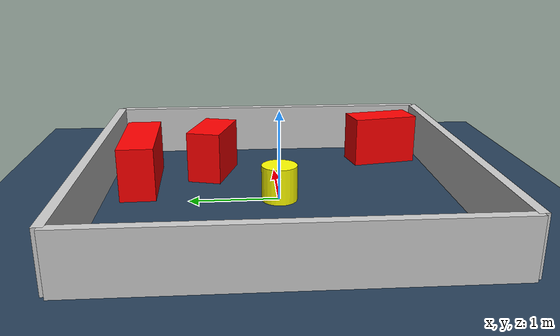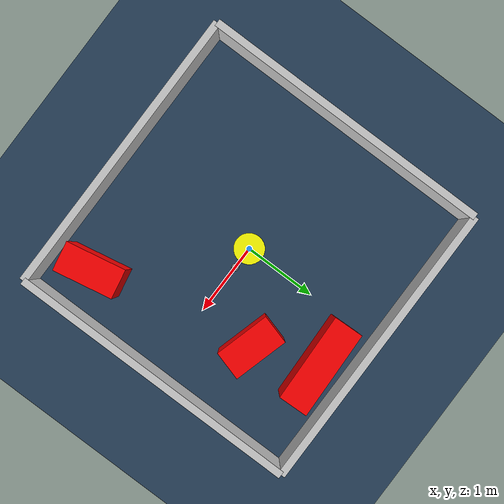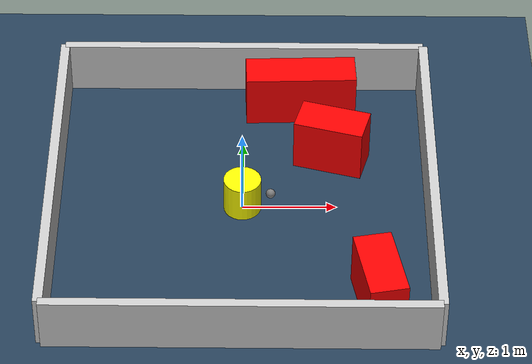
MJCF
<?xml version="1.0" ?>
<mujoco model="generated_environment">
  <option timestep="0.01" integrator="RK4" cone="elliptic"/>
  <default>
    <geom density="1"/>
  </default>
  <asset>
    <texture builtin="gradient" height="3072" rgb1="0.3 0.5 0.7" rgb2="0 0 0" type="skybox" width="512"/>
    <texture builtin="checker" height="300" mark="edge" markrgb="0.8 0.8 0.8" name="groundplane" rgb1="0.2 0.3 0.4" rgb2="0.1 0.2 0.3" type="2d" width="300"/>
    <material name="groundplane" reflectance="0.2" texrepeat="5 5" texture="groundplane" texuniform="true"/>
    <material name="robot" rgba="0.0 1.0 0.0 1"/>
  </asset>
  <worldbody>
    <light dir="0 0 -1" directional="true" pos="0 0 1.5"/>
    <geom condim="4" friction="1.0 0.005 0.001" material="groundplane" name="floor" size="0 0 0.05" type="plane"/>
    <body name="walls">
      <geom name="wall_1" condim="4" pos="-2.0 0.0 0.3" rgba="0.800000011920929 0.800000011920929 0.800000011920929 1.0" size="0.05 2.0 0.3" type="box"/>
      <geom name="wall_2" condim="4" pos="2.0 0.0 0.3" rgba="0.800000011920929 0.800000011920929 0.800000011920929 1.0" size="0.05 2.0 0.3" type="box"/>
      <geom name="wall_3" condim="4" pos="0.0 -2.0 0.3" rgba="0.800000011920929 0.800000011920929 0.800000011920929 1.0" size="2.0 0.05 0.3" type="box"/>
      <geom name="wall_4" condim="4" pos="0.0 2.0 0.3" rgba="0.800000011920929 0.800000011920929 0.800000011920929 1.0" size="2.0 0.05 0.3" type="box"/>
    </body>
    <body name="robot">
      <joint name="joint_x" type="slide" pos="0 0 0" axis="1 0 0"/>
      <joint name="joint_y" type="slide" pos="0 0 0" axis="0 1 0"/>
      <geom name="robot" type="sphere" pos="0.3 0.0 0.2" size="0.05" mass="5." friction="1.0 0.005 0.0001" condim="4" rgba="0.5 0.5 0.5 1.0"/>
      <site name="sensor_ball"/>
    </body>
    <body name="obstacle_movable_1">
      <geom name="obstacle_movable_1" condim="4" pos="0.0 0.0 0.2" euler="0 0 0.0" friction="1.0 0.005 0.001" rgba="1.0 1.0 0.0 1.0" size="0.2 0.2 0.0" type="cylinder" mass="0.1"/>
      <joint type="free"/>
    </body>
    <body name="obstacle_2_static">
      <geom name="obstacle_2_static" condim="4" pos="1.4024355089696017 -1.4255857675155366 0.3" euler="0 0 100.90519418929495" friction="1.0 0.005 0.001" rgba="1 0 0 1" size="0.40611150996770584 0.2 0.3" type="box"/>
    </body>
    <body name="obstacle_3_static">
      <geom name="obstacle_3_static" condim="4" pos="0.6319085447823662 1.5846485859146637 0.3" euler="0 0 181.9526667411523" friction="1.0 0.005 0.001" rgba="1 0 0 1" size="0.6041863032443147 0.2 0.3" type="box"/>
    </body>
    <body name="obstacle_4_static">
      <geom name="obstacle_4_static" condim="4" pos="0.9630729896803425 0.7573704868679239 0.3" euler="0 0 164.16974207349867" friction="1.0 0.005 0.001" rgba="1 0 0 1" size="0.37659744039788784 0.2 0.3" type="box"/>
    </body>
  </worldbody>
  <actuator>
    <motor name="actuator_x" joint="joint_x" gear="1" ctrlrange="-1 1"/>
    <motor name="actuator_y" joint="joint_y" gear="1" ctrlrange="-1 1"/>
  </actuator>
</mujoco>
